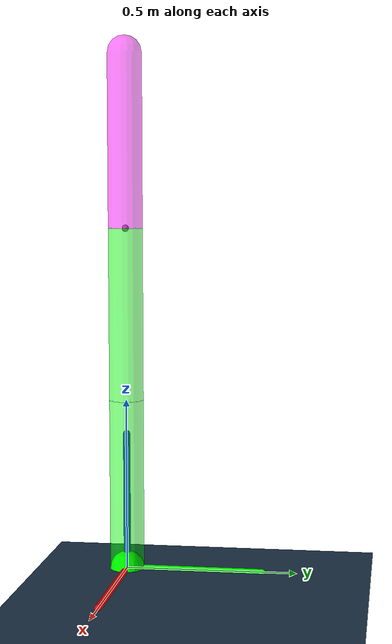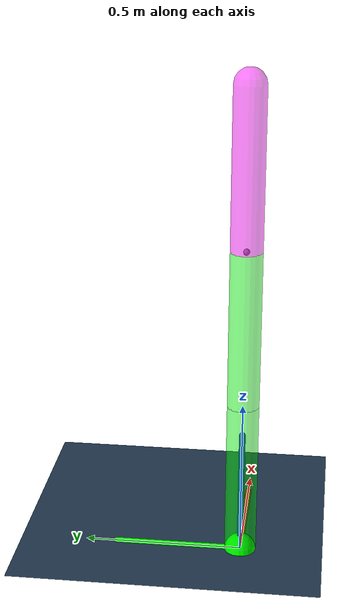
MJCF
<?xml version="1.0" encoding="utf-8"?>
<mujoco model="biped">

	<!-- Simulation Parameters -->
	<option timestep="0.001" iterations="50" solver="Newton" gravity="0 0 -9.81"></option>

	<!-- Specify the light settings -->
	<visual>
		<headlight diffuse="0.6 0.6 0.6" ambient="0.3 0.3 0.3" specular="0 0 0"/>
		<rgba haze="0.15 0.25 0.35 1"/>
		<global azimuth="150" elevation="-20" offwidth="720" offheight="480"/>
	</visual>

	<!-- Ground plane -->
	<asset>
        <texture type="skybox" builtin="gradient" rgb1="0.3 0.5 0.7" rgb2="0 0 0" width="512" height="3072"/>
        <texture type="2d" name="groundplane" builtin="checker" mark="edge" rgb1="0.2 0.3 0.4" rgb2="0.1 0.2 0.3"
        markrgb="0.8 0.8 0.8" width="300" height="300"/>
        <material name="groundplane" texture="groundplane" texuniform="true" texrepeat="1 1" reflectance="0.5"/> <!-- smallest checker square is 1 meter big-->
		<material name="torso_color" rgba="1 0 1 0.5"/>
		<material name="swing_leg_color" rgba="1 0 0 0.5"/>
		<material name="stance_leg_color" rgba="0 1 0 0.5"/>
    </asset>

	<!-- Set angles to be in radians -->
	<compiler angle="radian" autolimits="true" eulerseq="zyx"/>

	<!-- Bodies -->
	<worldbody>
		<!-- Ground -->
		<geom name="plane" type="plane" size="0.0 0.0 0.125" material="groundplane"  conaffinity="1" contype="1"/>

		<!-- Origin Visual -->
		<geom name="origin_sphere" type="sphere" size="0.025" pos="0 0 0" rgba="1 0 0 1" conaffinity="0" contype="0"/>
		<geom name="x_axis_origin" type="capsule" size="0.01 0.2" pos="0.2 0 0" euler="0 1.57 0" rgba="1 0 0 1" conaffinity="0" contype="0"/>
		<geom name="y_axis_origin" type="capsule" size="0.01 0.2" pos="0 0.2 0" euler="0 0 1.57" rgba="0 1 0 1" conaffinity="0" contype="0"/>
		<geom name="z_axis_origin" type="capsule" size="0.01 0.2" pos="0 0 0.2" euler="0 0 0" rgba="0 0 1 1" conaffinity="0" contype="0"/>

		<!-- COM Visual -->

		<!-- Robot -->
		<body name="stance_foot" mocap="true" pos="0 0 0">
			<geom name="stance_foot" type="sphere" size="0.05" pos="0 0 0" rgba="0 1 0 1" conaffinity="0" contype="0" density="0"/>
			<site name="stf_imu" size="0.01" pos="0 0 0" />
			<body name="stance_lower_leg">
				<joint name="stance_ankle_joint" type="hinge" axis="0 1 0" pos="0 0 0" limited="true" range="-3.14 3.14" damping="0.1"/>
				<geom name="stance_lower_leg" type="capsule" size="0.05 0.25" pos="0 0 0.25" material="stance_leg_color" conaffinity="0" contype="0" />
				<inertial mass="1.0" pos="0 0 0.25" diaginertia="0.01 0.01 0.01"/>

				<body name="stance_upper_leg" pos="0 0 0.5">
					<joint name="stance_knee_joint" type="hinge" axis="0 1 0" pos="0 0 0" limited="true" range="-3.14 3.14" damping="0.1"/>
					<geom name="stance_upper_leg" type="capsule" size="0.05 0.25" pos="0 0 0.25" material="stance_leg_color" conaffinity="0" contype="0"/>
					<inertial mass="1.0" pos="0 0 0.25" diaginertia="0.01 0.01 0.01"/>

					<body name="torso" pos="0 0 0.5">
						<site name="torso_imu" size="0.01" pos="0 0 0" />
						<joint name="stance_hip_joint" type="hinge" axis="0 1 0" pos="0 0 0" limited="true" range="-3.14 3.14" damping="0.1"/>
						<geom name="torso" type="capsule" size="0.05 0.25" pos="0 0 0.25" material="torso_color" conaffinity="0" contype="0"/>
						<inertial mass="10.0" pos="0 0 0.25" diaginertia="0.1 0.1 0.1"/>

						<body name="swing_upper_leg" pos="0 0 0">
							<!-- Swing leg upper part -->
							<joint name="swing_hip_joint" type="hinge" axis="0 1 0" pos="0 0 0" limited="true" range="-3.14 3.14" damping="0.1"/>
							<geom name="swing_upper_leg" type="capsule" size="0.05 0.25" pos="0 0 -0.25" material="swing_leg_color" conaffinity="0" contype="0"/>
							<inertial mass="1.0" pos="0 0 -0.25" diaginertia="0.01 0.01 0.01"/>

							<!-- Swing leg lower part -->
							<body name="swing_lower_leg" pos="0 0 -0.5">
								<joint name="swing_knee_joint" type="hinge" axis="0 1 0" pos="0 0 0" limited="true" range="-3.14 3.14" damping="0.1"/>
								<geom name="swing_lower_leg" type="capsule" size="0.05 0.25" pos="0 0 -0.25" material="swing_leg_color" conaffinity="0" contype="0"/>
								<inertial mass="1.0" pos="0 0 -0.25" diaginertia="0.01 0.01 0.01"/>
								<body name="swing_foot" pos="0 0 -0.5">
									<site name="swf_imu" size="0.01" pos="0 0 0" />
									<geom name="swing_foot" type="sphere" size="0.05" pos="0 0 0" rgba="0 1 0 1" conaffinity="0" contype="0"/>
								</body>
							</body>
						</body>

					</body>

				</body>
			</body>
		</body>

	</worldbody>

	<!-- Actuators -->
	<actuator>
    	<motor name="stance_knee_motor" joint="stance_knee_joint" ctrllimited="false" gear="1"/>
		<motor name="stance_hip_motor" joint="stance_hip_joint" ctrllimited="false" gear="1"/>
		<motor name="swing_hip_motor" joint="swing_hip_joint" ctrllimited="false" gear="1"/>
		<motor name="swing_knee_motor" joint="swing_knee_joint" ctrllimited="false" gear="1"/>
	</actuator>

	<!-- Sensors -->
	<sensor>
		<framepos name="torso_pos" objtype="site" objname="torso_imu" />
		<framelinvel name="torso_vel" objtype="site" objname="torso_imu" />
		<framequat name="torso_quat" objtype="site" objname="torso_imu" />
		<gyro name="torso_ang_vel" site="torso_imu" />

		<framepos name="stf_pos" objtype="site" objname="stf_imu" />
		<framelinvel name="stf_vel" objtype="site" objname="stf_imu" />

		<framepos name="swf_pos" objtype="site" objname="swf_imu" />
		<framelinvel name="swf_vel" objtype="site" objname="swf_imu" />

	</sensor>

</mujoco>
